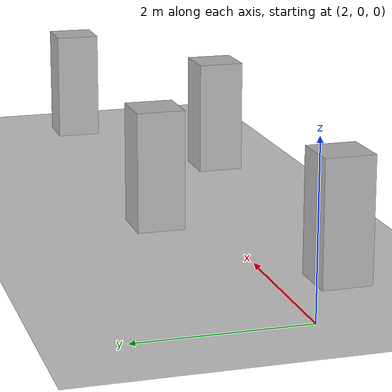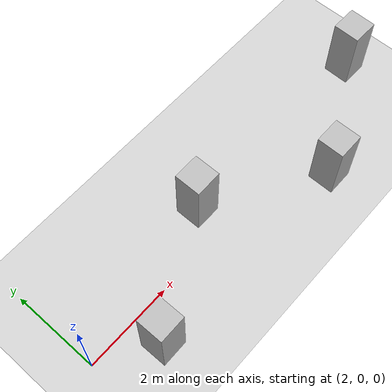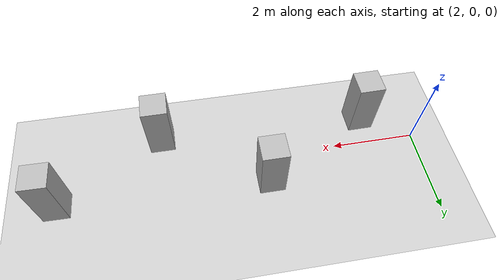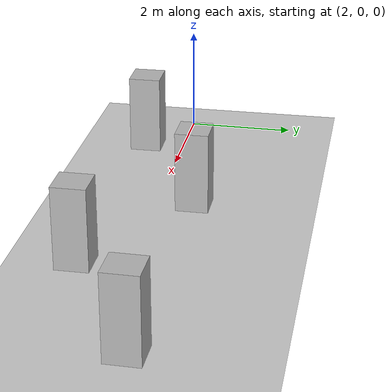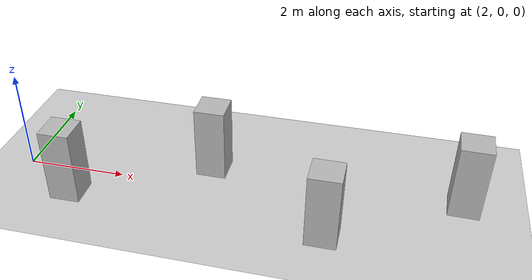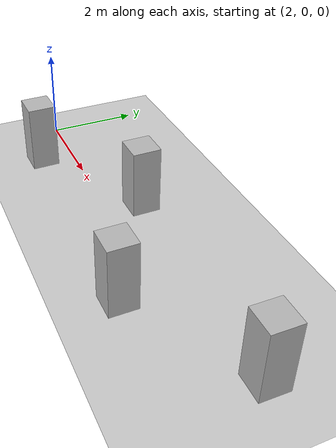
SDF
<?xml version="1.0"?>
<sdf version="1.6">
  <world name="v2-04g-r6-i1-compile-support-static-s5145">
    <gravity>0 0 -9.81</gravity>
    <physics name="v2_deterministic" type="ode">
      <max_step_size>0.002</max_step_size>
      <real_time_update_rate>500</real_time_update_rate>
    </physics>
    <include>
      <uri>model://sun</uri>
    </include>
    <include>
      <uri>model://ground_plane</uri>
    </include>
    <model name="pillar-1">
      <static>true</static>
      <pose>3.208773368 -0.716383819 0.750000000 0 0 0.012648534</pose>
      <link name="link">
        <collision name="collision">
          <geometry>
            <box>
              <size>0.600000 0.600000 1.500000</size>
            </box>
          </geometry>
        </collision>
        <visual name="visual">
          <geometry>
            <box>
              <size>0.600000 0.600000 1.500000</size>
            </box>
          </geometry>
        </visual>
      </link>
    </model>
    <model name="pillar-2">
      <static>true</static>
      <pose>5.764257922 0.691662657 0.750000000 0 0 0.001730935</pose>
      <link name="link">
        <collision name="collision">
          <geometry>
            <box>
              <size>0.600000 0.600000 1.500000</size>
            </box>
          </geometry>
        </collision>
        <visual name="visual">
          <geometry>
            <box>
              <size>0.600000 0.600000 1.500000</size>
            </box>
          </geometry>
        </visual>
      </link>
    </model>
    <model name="pillar-3">
      <static>true</static>
      <pose>8.237308719 -0.851775383 0.750000000 0 0 0.000730453</pose>
      <link name="link">
        <collision name="collision">
          <geometry>
            <box>
              <size>0.600000 0.600000 1.500000</size>
            </box>
          </geometry>
        </collision>
        <visual name="visual">
          <geometry>
            <box>
              <size>0.600000 0.600000 1.500000</size>
            </box>
          </geometry>
        </visual>
      </link>
    </model>
    <model name="pillar-4">
      <static>true</static>
      <pose>10.741340994 0.599112989 0.750000000 0 0 -0.014197632</pose>
      <link name="link">
        <collision name="collision">
          <geometry>
            <box>
              <size>0.600000 0.600000 1.500000</size>
            </box>
          </geometry>
        </collision>
        <visual name="visual">
          <geometry>
            <box>
              <size>0.600000 0.600000 1.500000</size>
            </box>
          </geometry>
        </visual>
      </link>
    </model>
  </world>
</sdf>
